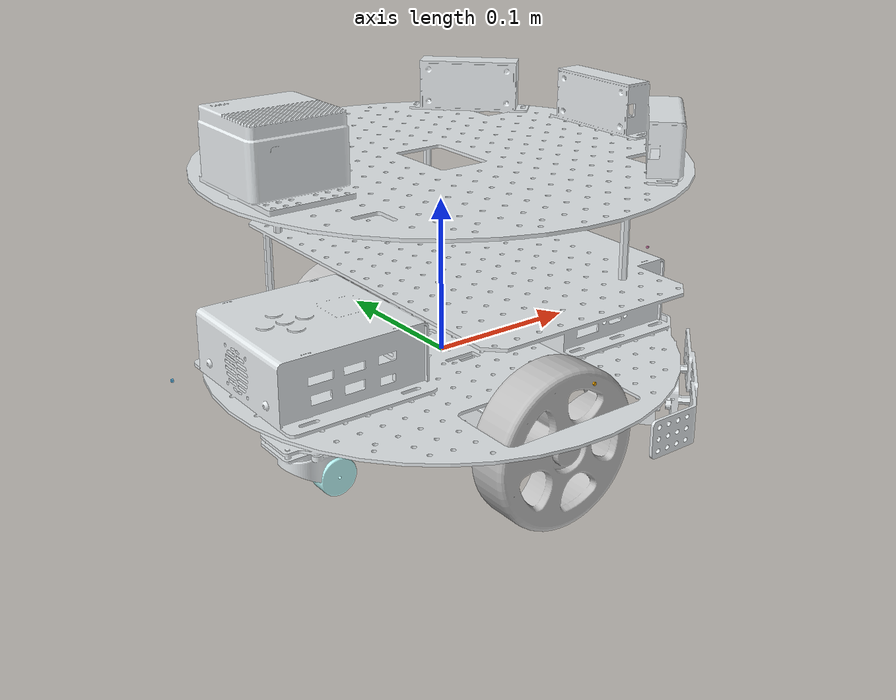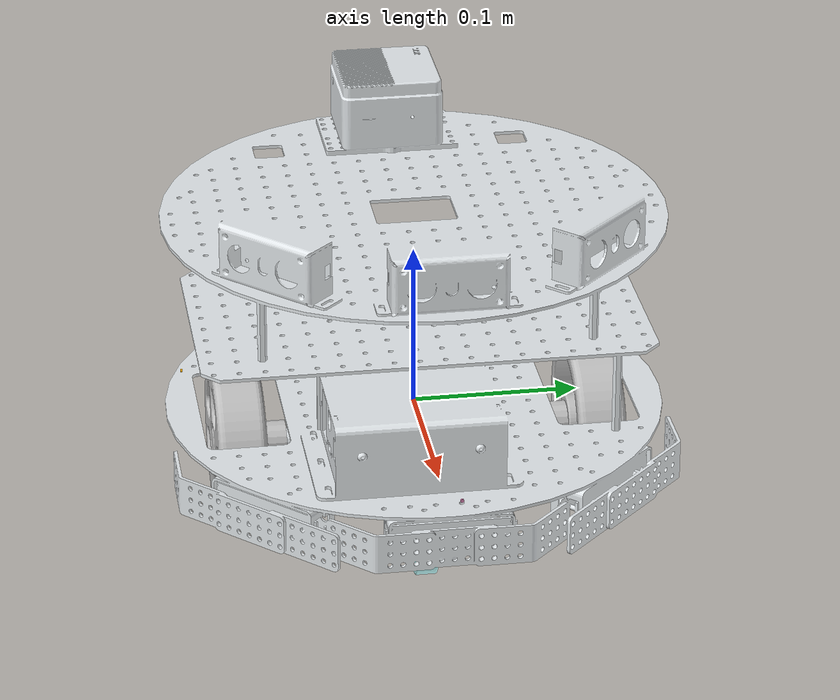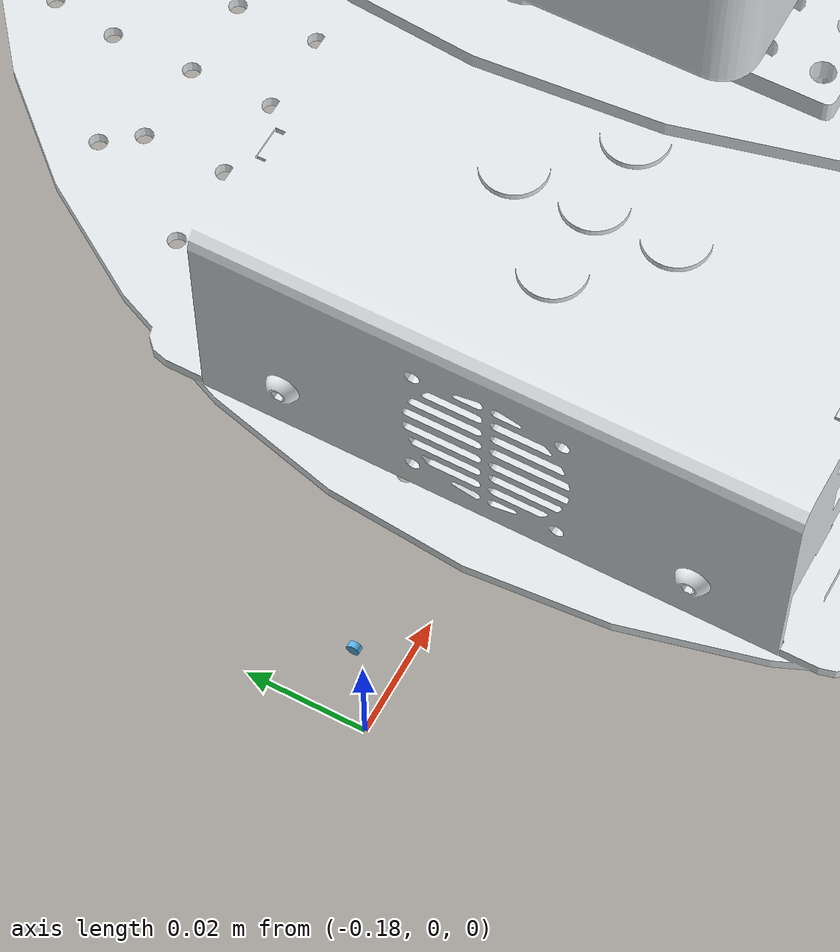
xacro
<?xml version="1.0"?>

<robot name="w2" xmlns:xacro="http://www.ros.org/wiki/xacro">

    <xacro:include filename="$(find upros_description)/xacro/w2_body.xacro" />
    <xacro:include filename="$(find upros_description)/xacro/sonar.xacro" />
    <xacro:include filename="$(find upros_description)/xacro/diff_drive_controller.xacro" />

    <xacro:w2_body />

    <!-- 使用宏添加超声波 -->
    <xacro:sonar pos="front" xyz=" 0.182 0 0.03" rpy="0 0 0"/>
    <xacro:sonar pos="left" xyz=" 0.0 0.14 0.03" rpy="0 0 1.5708"/>
    <xacro:sonar pos="right" xyz=" 0.0 -0.14 0.03" rpy="0 0 -1.5708"/>
    <xacro:sonar pos="back" xyz=" -0.182 0 0.03" rpy="0 0 3.1416"/>

    <xacro:differential_drive_controller />

</robot>

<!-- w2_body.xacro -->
<robot xmlns:xacro="http://www.ros.org/wiki/xacro" name="w2_body">

    <xacro:macro name="w2_body">

        <link name="base_footprint">
        </link>

        <link name="base_link">
            <inertial>
                <origin xyz="-0.00183994912012901 0.000718384784481402 0.040896257051146"
                    rpy="0 0 0" />
                <mass value="2.11446326748896" />
                <inertia ixx="0.0172522550977486" ixy="0.000112962512291742"
                    ixz="0.00215471233797688"
                    iyy="0.0214703513066925" iyz="-3.60344762320202E-05" izz="0.0232865128652866" />
            </inertial>
            <visual>
                <origin xyz="0 0 0" rpy="0 0 0" />
                <geometry>
                    <mesh filename="package://upros_description/meshes/W2C/base_link.STL" />
                </geometry>
                <material name="">
                    <color rgba="0.898039215686275 0.917647058823529 0.929411764705882 1" />
                </material>
            </visual>
            <collision>
                <origin xyz="0 0 0" rpy="0 0 0" />
                <geometry>
                    <mesh filename="package://upros_description/meshes/W2C/base_link.STL" />
                </geometry>
            </collision>
        </link>
        <joint name="base_footprint_joint" type="fixed">
            <parent link="base_footprint" />
            <child link="base_link" />
        </joint>

        <link name="wheel_L_link">
            <inertial>
                <origin xyz="-3.78770996320736E-07 -0.013414250594195 4.81266645289274E-07"
                    rpy="0 0 0" />
                <mass value="0.337836569375269" />
                <inertia ixx="0.000278270805900081" ixy="1.29138084160578E-09"
                    ixz="1.09699819030228E-09" iyy="0.000496405737651082"
                    iyz="-1.64156177606385E-09"
                    izz="0.000278271727426874" />
            </inertial>
            <visual>
                <origin xyz="0 0 0" rpy="0 0 0" />
                <geometry>
                    <mesh filename="package://upros_description/meshes/W2C/wheel_L_link.STL" />
                </geometry>
                <material name="">
                    <color rgba="0.752941176470588 0.752941176470588 0.752941176470588 1" />
                </material>
            </visual>
            <collision>
                <origin xyz="0 0 0" rpy="0 0 0" />
                <geometry>
                    <mesh filename="package://upros_description/meshes/W2C/wheel_L_link.STL" />
                </geometry>
            </collision>
        </link>
        <joint name="wheel_L_joint" type="continuous">
            <origin xyz="0 0.1215 -0.02" rpy="0 0 0" />
            <parent link="base_link" />
            <child link="wheel_L_link" />
            <axis xyz="0 1 0" />
        </joint>

        <link name="wheel_R_link">
            <inertial>
                <origin xyz="-5.54575135339762E-07 0.013414250594195 2.59868179624395E-07"
                    rpy="0 0 0" />
                <mass value="0.337836569375269" />
                <inertia ixx="0.000278271195902002" ixy="-1.89148049635397E-09"
                    ixz="1.18772924132671E-09" iyy="0.000496405737651082" iyz="8.85827903470683E-10"
                    izz="0.000278271337424954" />
            </inertial>
            <visual>
                <origin xyz="0 0 0" rpy="0 0 0" />
                <geometry>
                    <mesh filename="package://upros_description/meshes/W2C/wheel_R_link.STL" />
                </geometry>
                <material name="">
                    <color rgba="0.752941176470588 0.752941176470588 0.752941176470588 1" />
                </material>
            </visual>
            <collision>
                <origin xyz="0 0 0" rpy="0 0 0" />
                <geometry>
                    <mesh filename="package://upros_description/meshes/W2C/wheel_R_link.STL" />
                </geometry>
            </collision>
        </link>
        <joint name="wheel_R_joint" type="continuous">
            <origin xyz="0 -0.1215 -0.02" rpy="0 0 0" />
            <parent link="base_link" />
            <child link="wheel_R_link" />
            <axis xyz="0 1 0" />
        </joint>

        <link name="front_Link">
            <inertial>
                <origin xyz="0 0 0" rpy="0 0 0" />
                <mass value="0.0063074121665526" />
                <inertia ixx="3.34755925557046E-07" ixy="-1.45392467961487E-22"
                    ixz="2.42001994301979E-24" iyy="4.93530086138426E-07" iyz="6.44209161389679E-25"
                    izz="3.34755925557046E-07" />
            </inertial>
            <visual>
                <origin xyz="0 0 0" rpy="0 0 0" />
                <geometry>
                    <mesh filename="package://upros_description/meshes/W2C/wheel_B_Link.STL" />
                </geometry>
                <material name="">
                    <color rgba="0.752941176470588 1 1 1" />
                </material>
            </visual>
            <collision>
                <origin xyz="0 0 0" rpy="0 0 0" />
                <geometry>
                    <mesh filename="package://upros_description/meshes/W2C/wheel_B_Link.STL" />
                </geometry>
            </collision>
        </link>
        <joint name="front_joint" type="continuous">
            <origin xyz="0.0859999999999999 0 -0.0575" rpy="0 0 0" />
            <parent link="base_link" />
            <child link="front_Link" />
            <axis xyz="1 1 1" />
        </joint>

        <link name="back_Link">
            <inertial>
                <origin xyz="0 0 0" rpy="0 0 0" />
                <mass value="0.0063074121665526" />
                <inertia ixx="3.34755925557046E-07" ixy="-1.45392467961487E-22"
                    ixz="2.42001994301979E-24" iyy="4.93530086138426E-07" iyz="6.4420916138968E-25"
                    izz="3.34755925557046E-07" />
            </inertial>
            <visual>
                <origin xyz="0 0 0" rpy="0 0 0" />
                <geometry>
                    <mesh filename="package://upros_description/meshes/W2C/wheel_A_Link.STL" />
                </geometry>
                <material name="">
                    <color rgba="0.752941176470588 1 1 1" />
                </material>
            </visual>
            <collision>
                <origin xyz="0 0 0" rpy="0 0 0" />
                <geometry>
                    <mesh filename="package://upros_description/meshes/W2C/wheel_A_Link.STL" />
                </geometry>
            </collision>
        </link>
        <joint name="back_joint" type="continuous">
            <origin xyz="-0.0859999999999998 0 -0.0575" rpy="0 0 0" />
            <parent link="base_link" />
            <child link="back_Link" />
            <axis xyz="1 1 1" />
        </joint>

    </xacro:macro>

</robot>

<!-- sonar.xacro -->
<robot name="sonar"
  xmlns:xacro="http://ros.org/wiki/xacro">
  <xacro:property name="sonar_radius" value="0.001" />
  <xacro:property name="sonar_height" value="0.001" />

  <xacro:macro name="sonar" params="pos xyz rpy">
    <link name="${pos}_sonar">
      <visual>
        <origin xyz="0 0 0" rpy="0 1.57 0" />
        <geometry>
          <cylinder length="${sonar_height}" radius="${sonar_radius}" />
        </geometry>
      </visual>
      <collision>
        <origin xyz="0 0 0" rpy="0 0 0" />
        <geometry>
          <cylinder length="${sonar_height}" radius="${sonar_radius}" />
        </geometry>
      </collision>
    </link>

    <joint name="${pos}_sonar_joint" type="fixed">
      <origin xyz="${xyz}" rpy="${rpy}" />
      <parent link="base_link" />
      <child link="${pos}_sonar" />
    </joint>

    <gazebo reference="${pos}_sonar">
      <sensor type="ray" name="sonar">
        <pose>0 0 0 0 0 0</pose>
        <visualize>false</visualize>
        <update_rate>5</update_rate>
        <ray>
          <scan>
            <horizontal>
              <samples>10</samples>
              <resolution>0.2</resolution>
              <min_angle>-0.2</min_angle>
              <max_angle>0.2</max_angle>
            </horizontal>
            <vertical>
              <samples>10</samples>
              <resolution>0.2</resolution>
              <min_angle>-0.05</min_angle>
              <max_angle>0.05</max_angle>
            </vertical>
          </scan>
          <range>
            <min>0.15</min>
            <max>1</max>
            <resolution>0.02</resolution>
          </range>
        </ray>
        <plugin filename="libgazebo_ros_range.so" name="gazebo_ros_range">
          <gaussianNoise>0.005</gaussianNoise>
          <alwaysOn>true</alwaysOn>
          <updateRate>10</updateRate>
          <topicName>${pos}_sonar</topicName>
          <frameName>${pos}_sonar</frameName>
          <radiation>ultrasound</radiation>
          <fov>0.5</fov>
        </plugin>
      </sensor>
    </gazebo>
  </xacro:macro>
</robot>
